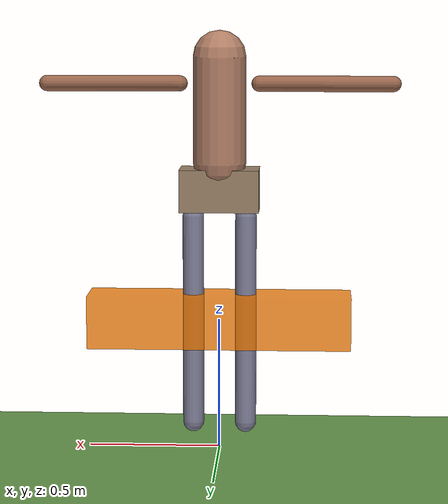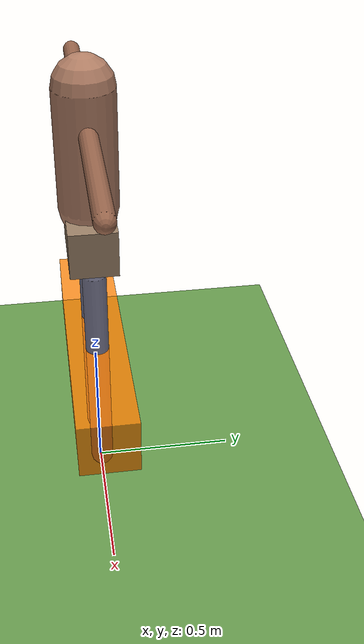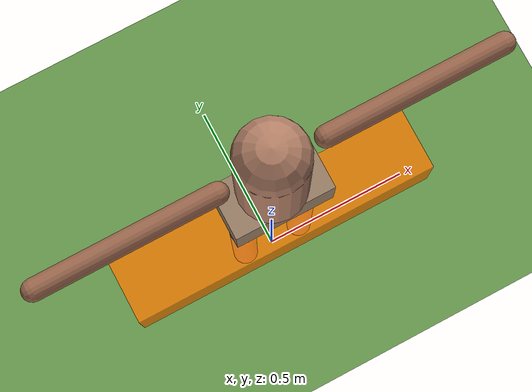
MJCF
<?xml version="1.0" ?>
<mujoco model="myobody_placeholder">
  <option timestep="0.002" gravity="0 0 -9.81" integrator="RK4"/>

  <visual>
    <global offwidth="1024" offheight="1024"/>
    <map znear="0.01" zfar="50"/>
    <headlight diffuse="0.8 0.8 0.8" ambient="0.3 0.3 0.3"/>
  </visual>

  <worldbody>
    <!-- Ground plane -->
    <geom name="floor" type="plane" size="10 10 0.1" rgba="0.4 0.6 0.3 1"/>

    <!-- Placeholder message -->
    <body name="placeholder_info" pos="0 0 0.5">
      <geom name="info_box" type="box" size="0.5 0.1 0.1"
            rgba="1 0.5 0 0.8" mass="1"/>
    </body>

    <!-- Simple humanoid -->
    <body name="pelvis" pos="0 0 1.0">
      <freejoint/>
      <geom name="pelvis_geom" type="box" size="0.15 0.08 0.08"
            rgba="0.6 0.5 0.4 1" mass="10"/>

      <!-- Torso -->
      <body name="torso" pos="0 0 0.1">
        <joint name="spine" type="hinge" axis="0 0 1" range="-1 1"/>
        <geom name="torso_geom" type="capsule" fromto="0 0 0 0 0 0.4"
              size="0.1" rgba="0.7 0.5 0.4 1" mass="20"/>

        <!-- Arms (simplified) -->
        <body name="left_arm" pos="-0.15 0 0.3">
          <joint name="l_shoulder" type="hinge" axis="0 1 0" range="-2 2"/>
          <geom name="l_arm" type="capsule" fromto="0 0 0 -0.5 0 0"
                size="0.03" rgba="0.6 0.4 0.3 1" mass="3"/>
        </body>

        <body name="right_arm" pos="0.15 0 0.3">
          <joint name="r_shoulder" type="hinge" axis="0 1 0" range="-2 2"/>
          <geom name="r_arm" type="capsule" fromto="0 0 0 0.5 0 0"
                size="0.03" rgba="0.6 0.4 0.3 1" mass="3"/>
        </body>
      </body>

      <!-- Legs -->
      <body name="left_leg" pos="-0.1 0 -0.1">
        <joint name="l_hip" type="hinge" axis="1 0 0" range="-1 1"/>
        <geom name="l_leg" type="capsule" fromto="0 0 0 0 0 -0.8"
              size="0.04" rgba="0.5 0.5 0.6 1" mass="8"/>
      </body>

      <body name="right_leg" pos="0.1 0 -0.1">
        <joint name="r_hip" type="hinge" axis="1 0 0" range="-1 1"/>
        <geom name="r_leg" type="capsule" fromto="0 0 0 0 0 -0.8"
              size="0.04" rgba="0.5 0.5 0.6 1" mass="8"/>
      </body>
    </body>
  </worldbody>

  <actuator>
    <!-- Simplified actuators (much fewer than 290) -->
    <motor name="spine_motor" joint="spine" gear="100"/>
    <motor name="l_shoulder_motor" joint="l_shoulder" gear="50"/>
    <motor name="r_shoulder_motor" joint="r_shoulder" gear="50"/>
    <motor name="l_hip_motor" joint="l_hip" gear="80"/>
    <motor name="r_hip_motor" joint="r_hip" gear="80"/>
  </actuator>
</mujoco>
